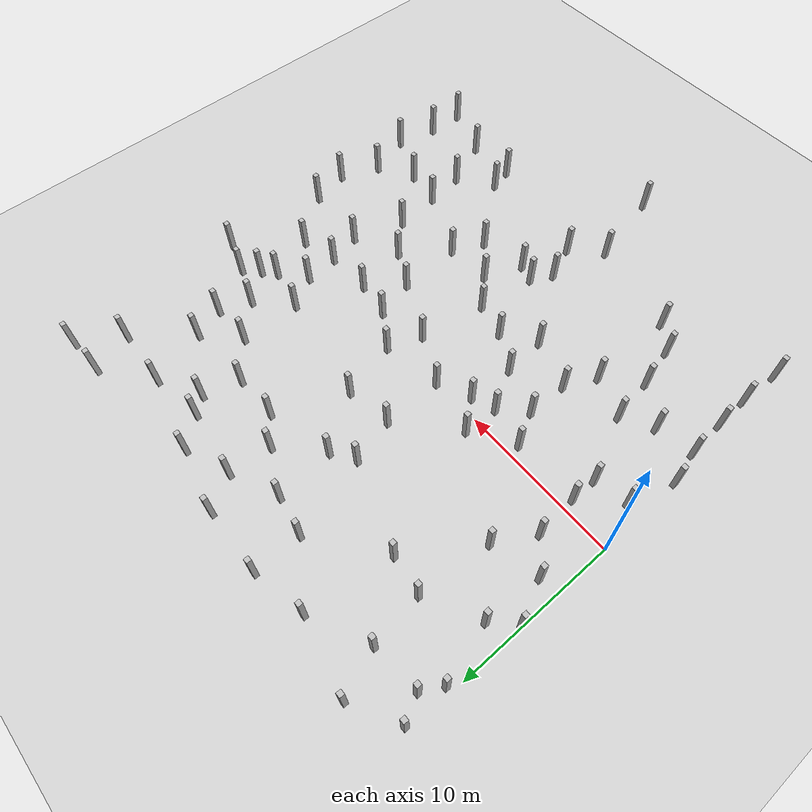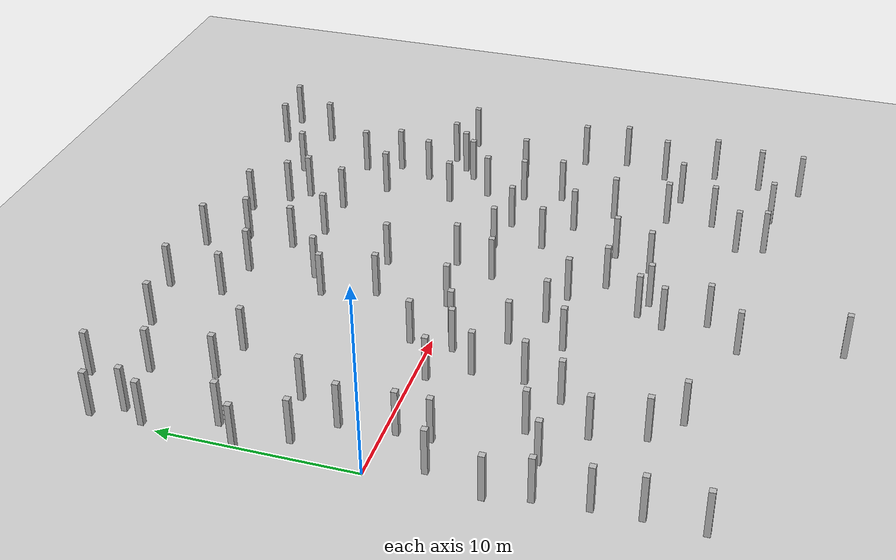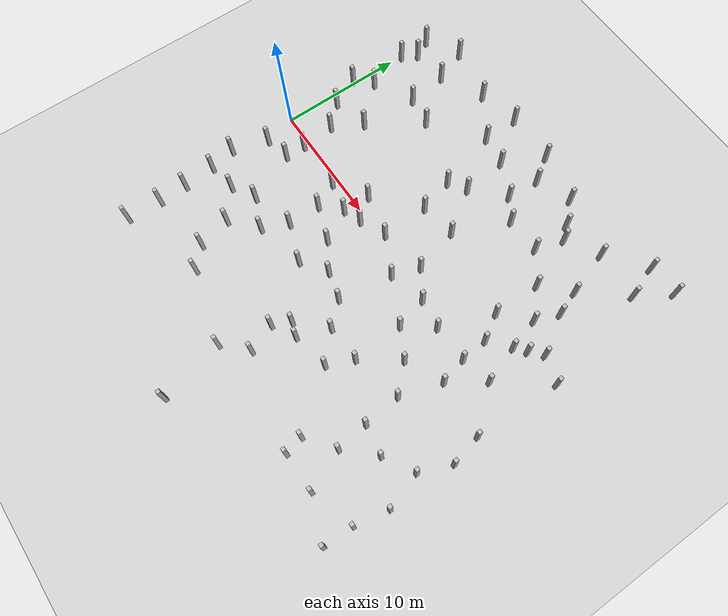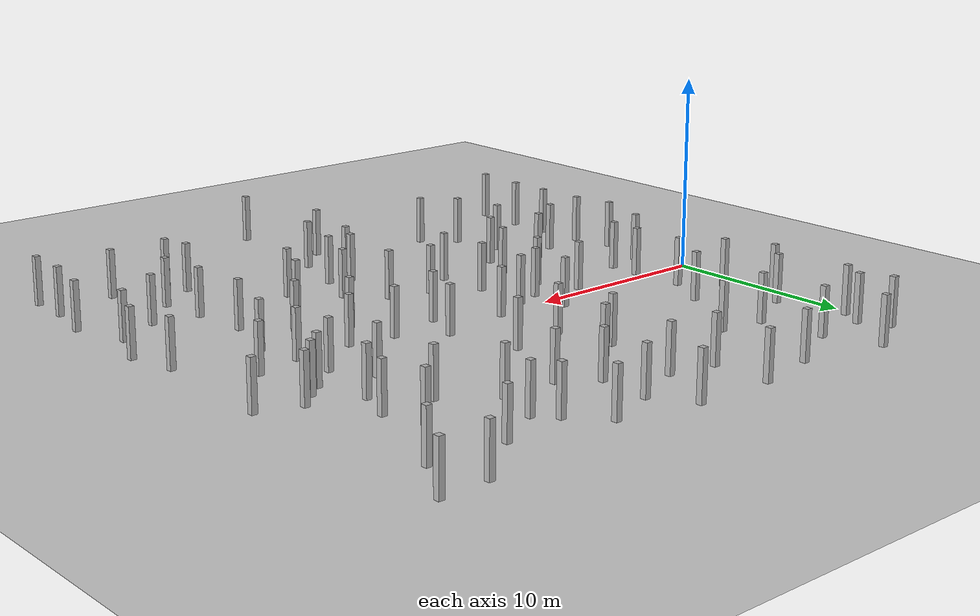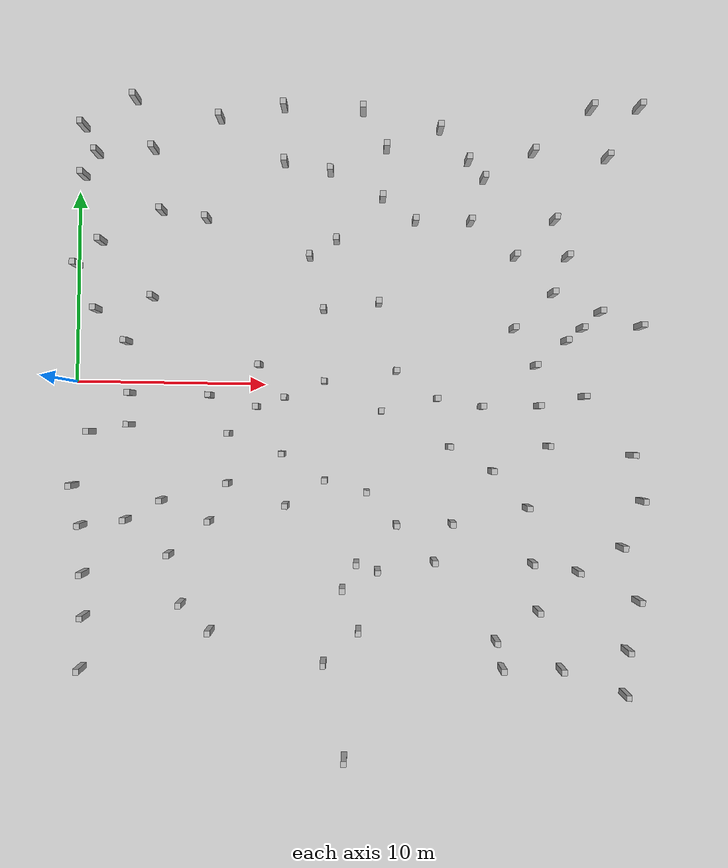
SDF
<?xml version='1.0' encoding='utf-8'?>
<sdf version="1.6">
  <world name="random_boxes_30x15_doubled">
    <include><uri>model://sun</uri></include>
    <include><uri>model://ground_plane</uri></include>
    <model name="box_0">
      <static>true</static>
      <pose>20.616 8.737 1.250 0 0 0</pose>
      <link name="link">
        <visual name="visual">
          <geometry>
            <box><size>0.3 0.3 2.5</size></box>
          </geometry>
        </visual>
        <collision name="collision">
          <geometry>
            <box><size>0.3 0.3 2.5</size></box>
          </geometry>
        </collision>
      </link>
    </model>
    <model name="box_4">
      <static>true</static>
      <pose>22.974 6.956 1.250 0 0 0</pose>
      <link name="link">
        <visual name="visual">
          <geometry>
            <box><size>0.3 0.3 2.5</size></box>
          </geometry>
        </visual>
        <collision name="collision">
          <geometry>
            <box><size>0.3 0.3 2.5</size></box>
          </geometry>
        </collision>
      </link>
    </model>
    <model name="box_5">
      <static>true</static>
      <pose>25.010 8.894 1.250 0 0 0</pose>
      <link name="link">
        <visual name="visual">
          <geometry>
            <box><size>0.3 0.3 2.5</size></box>
          </geometry>
        </visual>
        <collision name="collision">
          <geometry>
            <box><size>0.3 0.3 2.5</size></box>
          </geometry>
        </collision>
      </link>
    </model>
    <model name="box_6">
      <static>true</static>
      <pose>17.730 8.715 1.250 0 0 0</pose>
      <link name="link">
        <visual name="visual">
          <geometry>
            <box><size>0.3 0.3 2.5</size></box>
          </geometry>
        </visual>
        <collision name="collision">
          <geometry>
            <box><size>0.3 0.3 2.5</size></box>
          </geometry>
        </collision>
      </link>
    </model>
    <model name="box_11">
      <static>true</static>
      <pose>25.702 6.966 1.250 0 0 0</pose>
      <link name="link">
        <visual name="visual">
          <geometry>
            <box><size>0.3 0.3 2.5</size></box>
          </geometry>
        </visual>
        <collision name="collision">
          <geometry>
            <box><size>0.3 0.3 2.5</size></box>
          </geometry>
        </collision>
      </link>
    </model>
    <model name="box_14">
      <static>true</static>
      <pose>15.897 4.396 1.250 0 0 0</pose>
      <link name="link">
        <visual name="visual">
          <geometry>
            <box><size>0.3 0.3 2.5</size></box>
          </geometry>
        </visual>
        <collision name="collision">
          <geometry>
            <box><size>0.3 0.3 2.5</size></box>
          </geometry>
        </collision>
      </link>
    </model>
    <model name="box_15">
      <static>true</static>
      <pose>16.157 12.532 1.250 0 0 0</pose>
      <link name="link">
        <visual name="visual">
          <geometry>
            <box><size>0.3 0.3 2.5</size></box>
          </geometry>
        </visual>
        <collision name="collision">
          <geometry>
            <box><size>0.3 0.3 2.5</size></box>
          </geometry>
        </collision>
      </link>
    </model>
    <model name="box_17">
      <static>true</static>
      <pose>22.969 3.160 1.250 0 0 0</pose>
      <link name="link">
        <visual name="visual">
          <geometry>
            <box><size>0.3 0.3 2.5</size></box>
          </geometry>
        </visual>
        <collision name="collision">
          <geometry>
            <box><size>0.3 0.3 2.5</size></box>
          </geometry>
        </collision>
      </link>
    </model>
    <model name="box_18">
      <static>true</static>
      <pose>20.443 11.930 1.250 0 0 0</pose>
      <link name="link">
        <visual name="visual">
          <geometry>
            <box><size>0.3 0.3 2.5</size></box>
          </geometry>
        </visual>
        <collision name="collision">
          <geometry>
            <box><size>0.3 0.3 2.5</size></box>
          </geometry>
        </collision>
      </link>
    </model>
    <model name="box_20">
      <static>true</static>
      <pose>26.821 14.765 1.250 0 0 0</pose>
      <link name="link">
        <visual name="visual">
          <geometry>
            <box><size>0.3 0.3 2.5</size></box>
          </geometry>
        </visual>
        <collision name="collision">
          <geometry>
            <box><size>0.3 0.3 2.5</size></box>
          </geometry>
        </collision>
      </link>
    </model>
    <model name="box_21">
      <static>true</static>
      <pose>13.012 3.993 1.250 0 0 0</pose>
      <link name="link">
        <visual name="visual">
          <geometry>
            <box><size>0.3 0.3 2.5</size></box>
          </geometry>
        </visual>
        <collision name="collision">
          <geometry>
            <box><size>0.3 0.3 2.5</size></box>
          </geometry>
        </collision>
      </link>
    </model>
    <model name="box_22">
      <static>true</static>
      <pose>15.997 9.900 1.250 0 0 0</pose>
      <link name="link">
        <visual name="visual">
          <geometry>
            <box><size>0.3 0.3 2.5</size></box>
          </geometry>
        </visual>
        <collision name="collision">
          <geometry>
            <box><size>0.3 0.3 2.5</size></box>
          </geometry>
        </collision>
      </link>
    </model>
    <model name="box_24">
      <static>true</static>
      <pose>14.891 14.481 1.250 0 0 0</pose>
      <link name="link">
        <visual name="visual">
          <geometry>
            <box><size>0.3 0.3 2.5</size></box>
          </geometry>
        </visual>
        <collision name="collision">
          <geometry>
            <box><size>0.3 0.3 2.5</size></box>
          </geometry>
        </collision>
      </link>
    </model>
    <model name="box_26">
      <static>true</static>
      <pose>29.321 14.858 1.250 0 0 0</pose>
      <link name="link">
        <visual name="visual">
          <geometry>
            <box><size>0.3 0.3 2.5</size></box>
          </geometry>
        </visual>
        <collision name="collision">
          <geometry>
            <box><size>0.3 0.3 2.5</size></box>
          </geometry>
        </collision>
      </link>
    </model>
    <model name="box_27">
      <static>true</static>
      <pose>9.686 1.023 1.250 0 0 0</pose>
      <link name="link">
        <visual name="visual">
          <geometry>
            <box><size>0.3 0.3 2.5</size></box>
          </geometry>
        </visual>
        <collision name="collision">
          <geometry>
            <box><size>0.3 0.3 2.5</size></box>
          </geometry>
        </collision>
      </link>
    </model>
    <model name="box_31">
      <static>true</static>
      <pose>24.149 1.246 1.250 0 0 0</pose>
      <link name="link">
        <visual name="visual">
          <geometry>
            <box><size>0.3 0.3 2.5</size></box>
          </geometry>
        </visual>
        <collision name="collision">
          <geometry>
            <box><size>0.3 0.3 2.5</size></box>
          </geometry>
        </collision>
      </link>
    </model>
    <model name="box_32">
      <static>true</static>
      <pose>9.607 -1.170 1.250 0 0 0</pose>
      <link name="link">
        <visual name="visual">
          <geometry>
            <box><size>0.3 0.3 2.5</size></box>
          </geometry>
        </visual>
        <collision name="collision">
          <geometry>
            <box><size>0.3 0.3 2.5</size></box>
          </geometry>
        </collision>
      </link>
    </model>
    <model name="box_33">
      <static>true</static>
      <pose>24.341 -0.869 1.250 0 0 0</pose>
      <link name="link">
        <visual name="visual">
          <geometry>
            <box><size>0.3 0.3 2.5</size></box>
          </geometry>
        </visual>
        <collision name="collision">
          <geometry>
            <box><size>0.3 0.3 2.5</size></box>
          </geometry>
        </collision>
      </link>
    </model>
    <model name="box_34">
      <static>true</static>
      <pose>10.990 -3.620 1.250 0 0 0</pose>
      <link name="link">
        <visual name="visual">
          <geometry>
            <box><size>0.3 0.3 2.5</size></box>
          </geometry>
        </visual>
        <collision name="collision">
          <geometry>
            <box><size>0.3 0.3 2.5</size></box>
          </geometry>
        </collision>
      </link>
    </model>
    <model name="box_35">
      <static>true</static>
      <pose>11.214 -6.315 1.250 0 0 0</pose>
      <link name="link">
        <visual name="visual">
          <geometry>
            <box><size>0.3 0.3 2.5</size></box>
          </geometry>
        </visual>
        <collision name="collision">
          <geometry>
            <box><size>0.3 0.3 2.5</size></box>
          </geometry>
        </collision>
      </link>
    </model>
    <model name="box_36">
      <static>true</static>
      <pose>18.938 13.570 1.250 0 0 0</pose>
      <link name="link">
        <visual name="visual">
          <geometry>
            <box><size>0.3 0.3 2.5</size></box>
          </geometry>
        </visual>
        <collision name="collision">
          <geometry>
            <box><size>0.3 0.3 2.5</size></box>
          </geometry>
        </collision>
      </link>
    </model>
    <model name="box_38">
      <static>true</static>
      <pose>7.132 -0.618 1.250 0 0 0</pose>
      <link name="link">
        <visual name="visual">
          <geometry>
            <box><size>0.3 0.3 2.5</size></box>
          </geometry>
        </visual>
        <collision name="collision">
          <geometry>
            <box><size>0.3 0.3 2.5</size></box>
          </geometry>
        </collision>
      </link>
    </model>
    <model name="box_39">
      <static>true</static>
      <pose>24.993 5.047 1.250 0 0 0</pose>
      <link name="link">
        <visual name="visual">
          <geometry>
            <box><size>0.3 0.3 2.5</size></box>
          </geometry>
        </visual>
        <collision name="collision">
          <geometry>
            <box><size>0.3 0.3 2.5</size></box>
          </geometry>
        </collision>
      </link>
    </model>
    <model name="box_40">
      <static>true</static>
      <pose>21.379 -0.948 1.250 0 0 0</pose>
      <link name="link">
        <visual name="visual">
          <geometry>
            <box><size>0.3 0.3 2.5</size></box>
          </geometry>
        </visual>
        <collision name="collision">
          <geometry>
            <box><size>0.3 0.3 2.5</size></box>
          </geometry>
        </collision>
      </link>
    </model>
    <model name="box_41">
      <static>true</static>
      <pose>19.031 -0.583 1.250 0 0 0</pose>
      <link name="link">
        <visual name="visual">
          <geometry>
            <box><size>0.3 0.3 2.5</size></box>
          </geometry>
        </visual>
        <collision name="collision">
          <geometry>
            <box><size>0.3 0.3 2.5</size></box>
          </geometry>
        </collision>
      </link>
    </model>
    <model name="box_42">
      <static>true</static>
      <pose>8.155 -2.593 1.250 0 0 0</pose>
      <link name="link">
        <visual name="visual">
          <geometry>
            <box><size>0.3 0.3 2.5</size></box>
          </geometry>
        </visual>
        <collision name="collision">
          <geometry>
            <box><size>0.3 0.3 2.5</size></box>
          </geometry>
        </collision>
      </link>
    </model>
    <model name="box_43">
      <static>true</static>
      <pose>10.833 11.682 1.250 0 0 0</pose>
      <link name="link">
        <visual name="visual">
          <geometry>
            <box><size>0.3 0.3 2.5</size></box>
          </geometry>
        </visual>
        <collision name="collision">
          <geometry>
            <box><size>0.3 0.3 2.5</size></box>
          </geometry>
        </collision>
      </link>
    </model>
    <model name="box_51">
      <static>true</static>
      <pose>2.736 2.137 1.250 0 0 0</pose>
      <link name="link">
        <visual name="visual">
          <geometry>
            <box><size>0.3 0.3 2.5</size></box>
          </geometry>
        </visual>
        <collision name="collision">
          <geometry>
            <box><size>0.3 0.3 2.5</size></box>
          </geometry>
        </collision>
      </link>
    </model>
    <model name="box_56">
      <static>true</static>
      <pose>16.117 -1.301 1.250 0 0 0</pose>
      <link name="link">
        <visual name="visual">
          <geometry>
            <box><size>0.3 0.3 2.5</size></box>
          </geometry>
        </visual>
        <collision name="collision">
          <geometry>
            <box><size>0.3 0.3 2.5</size></box>
          </geometry>
        </collision>
      </link>
    </model>
    <model name="box_57">
      <static>true</static>
      <pose>26.706 -0.330 1.250 0 0 0</pose>
      <link name="link">
        <visual name="visual">
          <geometry>
            <box><size>0.3 0.3 2.5</size></box>
          </geometry>
        </visual>
        <collision name="collision">
          <geometry>
            <box><size>0.3 0.3 2.5</size></box>
          </geometry>
        </collision>
      </link>
    </model>
    <model name="box_58">
      <static>true</static>
      <pose>13.120 0.209 1.250 0 0 0</pose>
      <link name="link">
        <visual name="visual">
          <geometry>
            <box><size>0.3 0.3 2.5</size></box>
          </geometry>
        </visual>
        <collision name="collision">
          <geometry>
            <box><size>0.3 0.3 2.5</size></box>
          </geometry>
        </collision>
      </link>
    </model>
    <model name="box_60">
      <static>true</static>
      <pose>4.062 4.485 1.250 0 0 0</pose>
      <link name="link">
        <visual name="visual">
          <geometry>
            <box><size>0.3 0.3 2.5</size></box>
          </geometry>
        </visual>
        <collision name="collision">
          <geometry>
            <box><size>0.3 0.3 2.5</size></box>
          </geometry>
        </collision>
      </link>
    </model>
    <model name="box_63">
      <static>true</static>
      <pose>8.157 -5.200 1.250 0 0 0</pose>
      <link name="link">
        <visual name="visual">
          <geometry>
            <box><size>0.3 0.3 2.5</size></box>
          </geometry>
        </visual>
        <collision name="collision">
          <geometry>
            <box><size>0.3 0.3 2.5</size></box>
          </geometry>
        </collision>
      </link>
    </model>
    <model name="box_64">
      <static>true</static>
      <pose>5.797 -11.557 1.250 0 0 0</pose>
      <link name="link">
        <visual name="visual">
          <geometry>
            <box><size>0.3 0.3 2.5</size></box>
          </geometry>
        </visual>
        <collision name="collision">
          <geometry>
            <box><size>0.3 0.3 2.5</size></box>
          </geometry>
        </collision>
      </link>
    </model>
    <model name="box_65">
      <static>true</static>
      <pose>14.249 -10.650 1.250 0 0 0</pose>
      <link name="link">
        <visual name="visual">
          <geometry>
            <box><size>0.3 0.3 2.5</size></box>
          </geometry>
        </visual>
        <collision name="collision">
          <geometry>
            <box><size>0.3 0.3 2.5</size></box>
          </geometry>
        </collision>
      </link>
    </model>
    <model name="box_66">
      <static>true</static>
      <pose>16.068 -9.671 1.250 0 0 0</pose>
      <link name="link">
        <visual name="visual">
          <geometry>
            <box><size>0.3 0.3 2.5</size></box>
          </geometry>
        </visual>
        <collision name="collision">
          <geometry>
            <box><size>0.3 0.3 2.5</size></box>
          </geometry>
        </collision>
      </link>
    </model>
    <model name="box_67">
      <static>true</static>
      <pose>27.470 4.108 1.250 0 0 0</pose>
      <link name="link">
        <visual name="visual">
          <geometry>
            <box><size>0.3 0.3 2.5</size></box>
          </geometry>
        </visual>
        <collision name="collision">
          <geometry>
            <box><size>0.3 0.3 2.5</size></box>
          </geometry>
        </collision>
      </link>
    </model>
    <model name="box_68">
      <static>true</static>
      <pose>5.149 -8.977 1.250 0 0 0</pose>
      <link name="link">
        <visual name="visual">
          <geometry>
            <box><size>0.3 0.3 2.5</size></box>
          </geometry>
        </visual>
        <collision name="collision">
          <geometry>
            <box><size>0.3 0.3 2.5</size></box>
          </geometry>
        </collision>
      </link>
    </model>
    <model name="box_74">
      <static>true</static>
      <pose>29.586 3.407 1.250 0 0 0</pose>
      <link name="link">
        <visual name="visual">
          <geometry>
            <box><size>0.3 0.3 2.5</size></box>
          </geometry>
        </visual>
        <collision name="collision">
          <geometry>
            <box><size>0.3 0.3 2.5</size></box>
          </geometry>
        </collision>
      </link>
    </model>
    <model name="box_75">
      <static>true</static>
      <pose>0.733 -12.309 1.250 0 0 0</pose>
      <link name="link">
        <visual name="visual">
          <geometry>
            <box><size>0.3 0.3 2.5</size></box>
          </geometry>
        </visual>
        <collision name="collision">
          <geometry>
            <box><size>0.3 0.3 2.5</size></box>
          </geometry>
        </collision>
      </link>
    </model>
    <model name="box_76">
      <static>true</static>
      <pose>15.127 -12.809 1.250 0 0 0</pose>
      <link name="link">
        <visual name="visual">
          <geometry>
            <box><size>0.3 0.3 2.5</size></box>
          </geometry>
        </visual>
        <collision name="collision">
          <geometry>
            <box><size>0.3 0.3 2.5</size></box>
          </geometry>
        </collision>
      </link>
    </model>
    <model name="box_77">
      <static>true</static>
      <pose>0.665 -10.064 1.250 0 0 0</pose>
      <link name="link">
        <visual name="visual">
          <geometry>
            <box><size>0.3 0.3 2.5</size></box>
          </geometry>
        </visual>
        <collision name="collision">
          <geometry>
            <box><size>0.3 0.3 2.5</size></box>
          </geometry>
        </collision>
      </link>
    </model>
    <model name="box_79">
      <static>true</static>
      <pose>4.726 -6.159 1.250 0 0 0</pose>
      <link name="link">
        <visual name="visual">
          <geometry>
            <box><size>0.3 0.3 2.5</size></box>
          </geometry>
        </visual>
        <collision name="collision">
          <geometry>
            <box><size>0.3 0.3 2.5</size></box>
          </geometry>
        </collision>
      </link>
    </model>
    <model name="box_81">
      <static>true</static>
      <pose>7.227 -7.199 1.250 0 0 0</pose>
      <link name="link">
        <visual name="visual">
          <geometry>
            <box><size>0.3 0.3 2.5</size></box>
          </geometry>
        </visual>
        <collision name="collision">
          <geometry>
            <box><size>0.3 0.3 2.5</size></box>
          </geometry>
        </collision>
      </link>
    </model>
    <model name="box_85">
      <static>true</static>
      <pose>17.014 -7.233 1.250 0 0 0</pose>
      <link name="link">
        <visual name="visual">
          <geometry>
            <box><size>0.3 0.3 2.5</size></box>
          </geometry>
        </visual>
        <collision name="collision">
          <geometry>
            <box><size>0.3 0.3 2.5</size></box>
          </geometry>
        </collision>
      </link>
    </model>
    <model name="box_87">
      <static>true</static>
      <pose>13.319 -14.522 1.250 0 0 0</pose>
      <link name="link">
        <visual name="visual">
          <geometry>
            <box><size>0.3 0.3 2.5</size></box>
          </geometry>
        </visual>
        <collision name="collision">
          <geometry>
            <box><size>0.3 0.3 2.5</size></box>
          </geometry>
        </collision>
      </link>
    </model>
    <model name="box_88">
      <static>true</static>
      <pose>4.448 9.019 1.250 0 0 0</pose>
      <link name="link">
        <visual name="visual">
          <geometry>
            <box><size>0.3 0.3 2.5</size></box>
          </geometry>
        </visual>
        <collision name="collision">
          <geometry>
            <box><size>0.3 0.3 2.5</size></box>
          </geometry>
        </collision>
      </link>
    </model>
    <model name="box_91">
      <static>true</static>
      <pose>0.036 6.131 1.250 0 0 0</pose>
      <link name="link">
        <visual name="visual">
          <geometry>
            <box><size>0.3 0.3 2.5</size></box>
          </geometry>
        </visual>
        <collision name="collision">
          <geometry>
            <box><size>0.3 0.3 2.5</size></box>
          </geometry>
        </collision>
      </link>
    </model>
    <model name="box_92">
      <static>true</static>
      <pose>7.337 -12.948 1.250 0 0 0</pose>
      <link name="link">
        <visual name="visual">
          <geometry>
            <box><size>0.3 0.3 2.5</size></box>
          </geometry>
        </visual>
        <collision name="collision">
          <geometry>
            <box><size>0.3 0.3 2.5</size></box>
          </geometry>
        </collision>
      </link>
    </model>
    <model name="box_93">
      <static>true</static>
      <pose>0.506 -7.538 1.250 0 0 0</pose>
      <link name="link">
        <visual name="visual">
          <geometry>
            <box><size>0.3 0.3 2.5</size></box>
          </geometry>
        </visual>
        <collision name="collision">
          <geometry>
            <box><size>0.3 0.3 2.5</size></box>
          </geometry>
        </collision>
      </link>
    </model>
    <model name="box_94">
      <static>true</static>
      <pose>15.419 -5.550 1.250 0 0 0</pose>
      <link name="link">
        <visual name="visual">
          <geometry>
            <box><size>0.3 0.3 2.5</size></box>
          </geometry>
        </visual>
        <collision name="collision">
          <geometry>
            <box><size>0.3 0.3 2.5</size></box>
          </geometry>
        </collision>
      </link>
    </model>
    <model name="box_95">
      <static>true</static>
      <pose>0.024 -5.466 1.250 0 0 0</pose>
      <link name="link">
        <visual name="visual">
          <geometry>
            <box><size>0.3 0.3 2.5</size></box>
          </geometry>
        </visual>
        <collision name="collision">
          <geometry>
            <box><size>0.3 0.3 2.5</size></box>
          </geometry>
        </collision>
      </link>
    </model>
    <model name="box_99">
      <static>true</static>
      <pose>12.245 6.755 1.250 0 0 0</pose>
      <link name="link">
        <visual name="visual">
          <geometry>
            <box><size>0.3 0.3 2.5</size></box>
          </geometry>
        </visual>
        <collision name="collision">
          <geometry>
            <box><size>0.3 0.3 2.5</size></box>
          </geometry>
        </collision>
      </link>
    </model>
    <model name="box_100">
      <static>true</static>
      <pose>0.906 -2.638 1.250 0 0 0</pose>
      <link name="link">
        <visual name="visual">
          <geometry>
            <box><size>0.3 0.3 2.5</size></box>
          </geometry>
        </visual>
        <collision name="collision">
          <geometry>
            <box><size>0.3 0.3 2.5</size></box>
          </geometry>
        </collision>
      </link>
    </model>
    <model name="box_103">
      <static>true</static>
      <pose>29.272 -3.357 1.250 0 0 0</pose>
      <link name="link">
        <visual name="visual">
          <geometry>
            <box><size>0.3 0.3 2.5</size></box>
          </geometry>
        </visual>
        <collision name="collision">
          <geometry>
            <box><size>0.3 0.3 2.5</size></box>
          </geometry>
        </collision>
      </link>
    </model>
    <model name="box_105">
      <static>true</static>
      <pose>19.723 -3.090 1.250 0 0 0</pose>
      <link name="link">
        <visual name="visual">
          <geometry>
            <box><size>0.3 0.3 2.5</size></box>
          </geometry>
        </visual>
        <collision name="collision">
          <geometry>
            <box><size>0.3 0.3 2.5</size></box>
          </geometry>
        </collision>
      </link>
    </model>
    <model name="box_106">
      <static>true</static>
      <pose>1.113 3.802 1.250 0 0 0</pose>
      <link name="link">
        <visual name="visual">
          <geometry>
            <box><size>0.3 0.3 2.5</size></box>
          </geometry>
        </visual>
        <collision name="collision">
          <geometry>
            <box><size>0.3 0.3 2.5</size></box>
          </geometry>
        </collision>
      </link>
    </model>
    <model name="box_107">
      <static>true</static>
      <pose>21.999 -4.325 1.250 0 0 0</pose>
      <link name="link">
        <visual name="visual">
          <geometry>
            <box><size>0.3 0.3 2.5</size></box>
          </geometry>
        </visual>
        <collision name="collision">
          <geometry>
            <box><size>0.3 0.3 2.5</size></box>
          </geometry>
        </collision>
      </link>
    </model>
    <model name="box_108">
      <static>true</static>
      <pose>22.332 -13.213 1.250 0 0 0</pose>
      <link name="link">
        <visual name="visual">
          <geometry>
            <box><size>0.3 0.3 2.5</size></box>
          </geometry>
        </visual>
        <collision name="collision">
          <geometry>
            <box><size>0.3 0.3 2.5</size></box>
          </geometry>
        </collision>
      </link>
    </model>
    <model name="box_110">
      <static>true</static>
      <pose>19.935 -7.115 1.250 0 0 0</pose>
      <link name="link">
        <visual name="visual">
          <geometry>
            <box><size>0.3 0.3 2.5</size></box>
          </geometry>
        </visual>
        <collision name="collision">
          <geometry>
            <box><size>0.3 0.3 2.5</size></box>
          </geometry>
        </collision>
      </link>
    </model>
    <model name="box_111">
      <static>true</static>
      <pose>29.847 -5.750 1.250 0 0 0</pose>
      <link name="link">
        <visual name="visual">
          <geometry>
            <box><size>0.3 0.3 2.5</size></box>
          </geometry>
        </visual>
        <collision name="collision">
          <geometry>
            <box><size>0.3 0.3 2.5</size></box>
          </geometry>
        </collision>
      </link>
    </model>
    <model name="box_112">
      <static>true</static>
      <pose>19.030 -9.124 1.250 0 0 0</pose>
      <link name="link">
        <visual name="visual">
          <geometry>
            <box><size>0.3 0.3 2.5</size></box>
          </geometry>
        </visual>
        <collision name="collision">
          <geometry>
            <box><size>0.3 0.3 2.5</size></box>
          </geometry>
        </collision>
      </link>
    </model>
    <model name="box_113">
      <static>true</static>
      <pose>13.234 -4.960 1.250 0 0 0</pose>
      <link name="link">
        <visual name="visual">
          <geometry>
            <box><size>0.3 0.3 2.5</size></box>
          </geometry>
        </visual>
        <collision name="collision">
          <geometry>
            <box><size>0.3 0.3 2.5</size></box>
          </geometry>
        </collision>
      </link>
    </model>
    <model name="box_115">
      <static>true</static>
      <pose>24.506 -11.611 1.250 0 0 0</pose>
      <link name="link">
        <visual name="visual">
          <geometry>
            <box><size>0.3 0.3 2.5</size></box>
          </geometry>
        </visual>
        <collision name="collision">
          <geometry>
            <box><size>0.3 0.3 2.5</size></box>
          </geometry>
        </collision>
      </link>
    </model>
    <model name="box_117">
      <static>true</static>
      <pose>14.496 -19.554 1.250 0 0 0</pose>
      <link name="link">
        <visual name="visual">
          <geometry>
            <box><size>0.3 0.3 2.5</size></box>
          </geometry>
        </visual>
        <collision name="collision">
          <geometry>
            <box><size>0.3 0.3 2.5</size></box>
          </geometry>
        </collision>
      </link>
    </model>
    <model name="box_120">
      <static>true</static>
      <pose>10.760 14.593 1.250 0 0 0</pose>
      <link name="link">
        <visual name="visual">
          <geometry>
            <box><size>0.3 0.3 2.5</size></box>
          </geometry>
        </visual>
        <collision name="collision">
          <geometry>
            <box><size>0.3 0.3 2.5</size></box>
          </geometry>
        </collision>
      </link>
    </model>
    <model name="box_121">
      <static>true</static>
      <pose>3.982 12.250 1.250 0 0 0</pose>
      <link name="link">
        <visual name="visual">
          <geometry>
            <box><size>0.3 0.3 2.5</size></box>
          </geometry>
        </visual>
        <collision name="collision">
          <geometry>
            <box><size>0.3 0.3 2.5</size></box>
          </geometry>
        </collision>
      </link>
    </model>
    <model name="box_122">
      <static>true</static>
      <pose>0.284 13.400 1.250 0 0 0</pose>
      <link name="link">
        <visual name="visual">
          <geometry>
            <box><size>0.3 0.3 2.5</size></box>
          </geometry>
        </visual>
        <collision name="collision">
          <geometry>
            <box><size>0.3 0.3 2.5</size></box>
          </geometry>
        </collision>
      </link>
    </model>
    <model name="box_123">
      <static>true</static>
      <pose>2.956 -2.227 1.250 0 0 0</pose>
      <link name="link">
        <visual name="visual">
          <geometry>
            <box><size>0.3 0.3 2.5</size></box>
          </geometry>
        </visual>
        <collision name="collision">
          <geometry>
            <box><size>0.3 0.3 2.5</size></box>
          </geometry>
        </collision>
      </link>
    </model>
    <model name="box_125">
      <static>true</static>
      <pose>24.882 -2.966 1.250 0 0 0</pose>
      <link name="link">
        <visual name="visual">
          <geometry>
            <box><size>0.3 0.3 2.5</size></box>
          </geometry>
        </visual>
        <collision name="collision">
          <geometry>
            <box><size>0.3 0.3 2.5</size></box>
          </geometry>
        </collision>
      </link>
    </model>
    <model name="box_126">
      <static>true</static>
      <pose>0.342 10.808 1.250 0 0 0</pose>
      <link name="link">
        <visual name="visual">
          <geometry>
            <box><size>0.3 0.3 2.5</size></box>
          </geometry>
        </visual>
        <collision name="collision">
          <geometry>
            <box><size>0.3 0.3 2.5</size></box>
          </geometry>
        </collision>
      </link>
    </model>
    <model name="box_128">
      <static>true</static>
      <pose>24.176 -9.121 1.250 0 0 0</pose>
      <link name="link">
        <visual name="visual">
          <geometry>
            <box><size>0.3 0.3 2.5</size></box>
          </geometry>
        </visual>
        <collision name="collision">
          <geometry>
            <box><size>0.3 0.3 2.5</size></box>
          </geometry>
        </collision>
      </link>
    </model>
    <model name="box_129">
      <static>true</static>
      <pose>29.147 -15.884 1.250 0 0 0</pose>
      <link name="link">
        <visual name="visual">
          <geometry>
            <box><size>0.3 0.3 2.5</size></box>
          </geometry>
        </visual>
        <collision name="collision">
          <geometry>
            <box><size>0.3 0.3 2.5</size></box>
          </geometry>
        </collision>
      </link>
    </model>
    <model name="box_130">
      <static>true</static>
      <pose>29.221 -13.592 1.250 0 0 0</pose>
      <link name="link">
        <visual name="visual">
          <geometry>
            <box><size>0.3 0.3 2.5</size></box>
          </geometry>
        </visual>
        <collision name="collision">
          <geometry>
            <box><size>0.3 0.3 2.5</size></box>
          </geometry>
        </collision>
      </link>
    </model>
    <model name="box_132">
      <static>true</static>
      <pose>0.606 -15.048 1.250 0 0 0</pose>
      <link name="link">
        <visual name="visual">
          <geometry>
            <box><size>0.3 0.3 2.5</size></box>
          </geometry>
        </visual>
        <collision name="collision">
          <geometry>
            <box><size>0.3 0.3 2.5</size></box>
          </geometry>
        </collision>
      </link>
    </model>
    <model name="box_133">
      <static>true</static>
      <pose>2.858 -7.207 1.250 0 0 0</pose>
      <link name="link">
        <visual name="visual">
          <geometry>
            <box><size>0.3 0.3 2.5</size></box>
          </geometry>
        </visual>
        <collision name="collision">
          <geometry>
            <box><size>0.3 0.3 2.5</size></box>
          </geometry>
        </collision>
      </link>
    </model>
    <model name="box_134">
      <static>true</static>
      <pose>28.838 -8.189 1.250 0 0 0</pose>
      <link name="link">
        <visual name="visual">
          <geometry>
            <box><size>0.3 0.3 2.5</size></box>
          </geometry>
        </visual>
        <collision name="collision">
          <geometry>
            <box><size>0.3 0.3 2.5</size></box>
          </geometry>
        </collision>
      </link>
    </model>
    <model name="box_136">
      <static>true</static>
      <pose>25.723 2.559 1.250 0 0 0</pose>
      <link name="link">
        <visual name="visual">
          <geometry>
            <box><size>0.3 0.3 2.5</size></box>
          </geometry>
        </visual>
        <collision name="collision">
          <geometry>
            <box><size>0.3 0.3 2.5</size></box>
          </geometry>
        </collision>
      </link>
    </model>
    <model name="box_137">
      <static>true</static>
      <pose>16.872 0.823 1.250 0 0 0</pose>
      <link name="link">
        <visual name="visual">
          <geometry>
            <box><size>0.3 0.3 2.5</size></box>
          </geometry>
        </visual>
        <collision name="collision">
          <geometry>
            <box><size>0.3 0.3 2.5</size></box>
          </geometry>
        </collision>
      </link>
    </model>
    <model name="box_138">
      <static>true</static>
      <pose>6.807 8.650 1.250 0 0 0</pose>
      <link name="link">
        <visual name="visual">
          <geometry>
            <box><size>0.3 0.3 2.5</size></box>
          </geometry>
        </visual>
        <collision name="collision">
          <geometry>
            <box><size>0.3 0.3 2.5</size></box>
          </geometry>
        </collision>
      </link>
    </model>
    <model name="box_139">
      <static>true</static>
      <pose>26.541 3.238 1.250 0 0 0</pose>
      <link name="link">
        <visual name="visual">
          <geometry>
            <box><size>0.3 0.3 2.5</size></box>
          </geometry>
        </visual>
        <collision name="collision">
          <geometry>
            <box><size>0.3 0.3 2.5</size></box>
          </geometry>
        </collision>
      </link>
    </model>
    <model name="box_143">
      <static>true</static>
      <pose>22.695 -14.659 1.250 0 0 0</pose>
      <link name="link">
        <visual name="visual">
          <geometry>
            <box><size>0.3 0.3 2.5</size></box>
          </geometry>
        </visual>
        <collision name="collision">
          <geometry>
            <box><size>0.3 0.3 2.5</size></box>
          </geometry>
        </collision>
      </link>
    </model>
    <model name="box_144">
      <static>true</static>
      <pose>26.551 -9.516 1.250 0 0 0</pose>
      <link name="link">
        <visual name="visual">
          <geometry>
            <box><size>0.3 0.3 2.5</size></box>
          </geometry>
        </visual>
        <collision name="collision">
          <geometry>
            <box><size>0.3 0.3 2.5</size></box>
          </geometry>
        </collision>
      </link>
    </model>
    <model name="box_145">
      <static>true</static>
      <pose>23.858 -6.216 1.250 0 0 0</pose>
      <link name="link">
        <visual name="visual">
          <geometry>
            <box><size>0.3 0.3 2.5</size></box>
          </geometry>
        </visual>
        <collision name="collision">
          <geometry>
            <box><size>0.3 0.3 2.5</size></box>
          </geometry>
        </collision>
      </link>
    </model>
    <model name="box_148">
      <static>true</static>
      <pose>2.969 -0.573 1.250 0 0 0</pose>
      <link name="link">
        <visual name="visual">
          <geometry>
            <box><size>0.3 0.3 2.5</size></box>
          </geometry>
        </visual>
        <collision name="collision">
          <geometry>
            <box><size>0.3 0.3 2.5</size></box>
          </geometry>
        </collision>
      </link>
    </model>
    <model name="box_149">
      <static>true</static>
      <pose>27.702 12.215 1.250 0 0 0</pose>
      <link name="link">
        <visual name="visual">
          <geometry>
            <box><size>0.3 0.3 2.5</size></box>
          </geometry>
        </visual>
        <collision name="collision">
          <geometry>
            <box><size>0.3 0.3 2.5</size></box>
          </geometry>
        </collision>
      </link>
    </model>
    <model name="box_153">
      <static>true</static>
      <pose>23.839 12.435 1.250 0 0 0</pose>
      <link name="link">
        <visual name="visual">
          <geometry>
            <box><size>0.3 0.3 2.5</size></box>
          </geometry>
        </visual>
        <collision name="collision">
          <geometry>
            <box><size>0.3 0.3 2.5</size></box>
          </geometry>
        </collision>
      </link>
    </model>
    <model name="box_154">
      <static>true</static>
      <pose>13.626 7.644 1.250 0 0 0</pose>
      <link name="link">
        <visual name="visual">
          <geometry>
            <box><size>0.3 0.3 2.5</size></box>
          </geometry>
        </visual>
        <collision name="collision">
          <geometry>
            <box><size>0.3 0.3 2.5</size></box>
          </geometry>
        </collision>
      </link>
    </model>
    <model name="box_156">
      <static>true</static>
      <pose>29.742 -10.985 1.250 0 0 0</pose>
      <link name="link">
        <visual name="visual">
          <geometry>
            <box><size>0.3 0.3 2.5</size></box>
          </geometry>
        </visual>
        <collision name="collision">
          <geometry>
            <box><size>0.3 0.3 2.5</size></box>
          </geometry>
        </collision>
      </link>
    </model>
    <model name="box_158">
      <static>true</static>
      <pose>21.282 10.999 1.250 0 0 0</pose>
      <link name="link">
        <visual name="visual">
          <geometry>
            <box><size>0.3 0.3 2.5</size></box>
          </geometry>
        </visual>
        <collision name="collision">
          <geometry>
            <box><size>0.3 0.3 2.5</size></box>
          </geometry>
        </collision>
      </link>
    </model>
    <model name="box_159">
      <static>true</static>
      <pose>2.973 14.885 1.250 0 0 0</pose>
      <link name="link">
        <visual name="visual">
          <geometry>
            <box><size>0.3 0.3 2.5</size></box>
          </geometry>
        </visual>
        <collision name="collision">
          <geometry>
            <box><size>0.3 0.3 2.5</size></box>
          </geometry>
        </collision>
      </link>
    </model>
    <model name="box_161">
      <static>true</static>
      <pose>14.957 -9.288 1.250 0 0 0</pose>
      <link name="link">
        <visual name="visual">
          <geometry>
            <box><size>0.3 0.3 2.5</size></box>
          </geometry>
        </visual>
        <collision name="collision">
          <geometry>
            <box><size>0.3 0.3 2.5</size></box>
          </geometry>
        </collision>
      </link>
    </model>
    <model name="box_164">
      <static>true</static>
      <pose>1.026 12.000 1.250 0 0 0</pose>
      <link name="link">
        <visual name="visual">
          <geometry>
            <box><size>0.3 0.3 2.5</size></box>
          </geometry>
        </visual>
        <collision name="collision">
          <geometry>
            <box><size>0.3 0.3 2.5</size></box>
          </geometry>
        </collision>
      </link>
    </model>
    <model name="box_165">
      <static>true</static>
      <pose>13.250 11.237 1.250 0 0 0</pose>
      <link name="link">
        <visual name="visual">
          <geometry>
            <box><size>0.3 0.3 2.5</size></box>
          </geometry>
        </visual>
        <collision name="collision">
          <geometry>
            <box><size>0.3 0.3 2.5</size></box>
          </geometry>
        </collision>
      </link>
    </model>
    <model name="box_168">
      <static>true</static>
      <pose>7.430 13.931 1.250 0 0 0</pose>
      <link name="link">
        <visual name="visual">
          <geometry>
            <box><size>0.3 0.3 2.5</size></box>
          </geometry>
        </visual>
        <collision name="collision">
          <geometry>
            <box><size>0.3 0.3 2.5</size></box>
          </geometry>
        </collision>
      </link>
    </model>
    <model name="box_169">
      <static>true</static>
      <pose>25.790 -14.636 1.250 0 0 0</pose>
      <link name="link">
        <visual name="visual">
          <geometry>
            <box><size>0.3 0.3 2.5</size></box>
          </geometry>
        </visual>
        <collision name="collision">
          <geometry>
            <box><size>0.3 0.3 2.5</size></box>
          </geometry>
        </collision>
      </link>
    </model>
    <model name="box_171">
      <static>true</static>
      <pose>1.300 7.379 1.250 0 0 0</pose>
      <link name="link">
        <visual name="visual">
          <geometry>
            <box><size>0.3 0.3 2.5</size></box>
          </geometry>
        </visual>
        <collision name="collision">
          <geometry>
            <box><size>0.3 0.3 2.5</size></box>
          </geometry>
        </collision>
      </link>
    </model>
    <model name="box_175">
      <static>true</static>
      <pose>11.056 -0.669 1.250 0 0 0</pose>
      <link name="link">
        <visual name="visual">
          <geometry>
            <box><size>0.3 0.3 2.5</size></box>
          </geometry>
        </visual>
        <collision name="collision">
          <geometry>
            <box><size>0.3 0.3 2.5</size></box>
          </geometry>
        </collision>
      </link>
    </model>
    </world>
</sdf>
